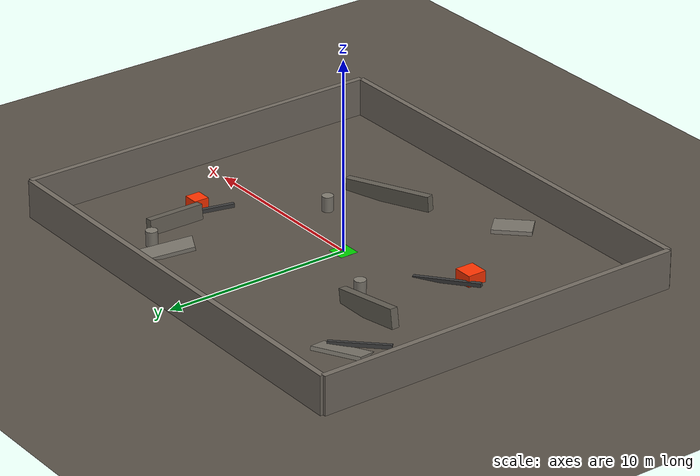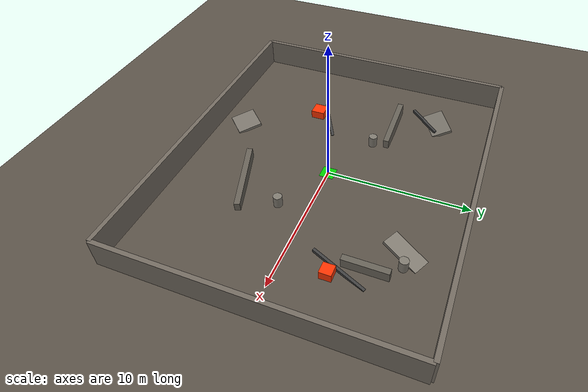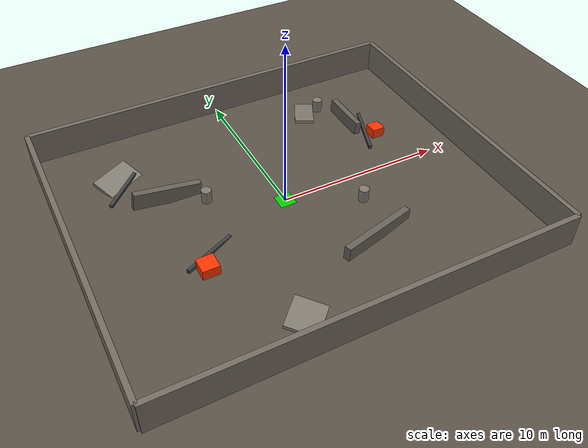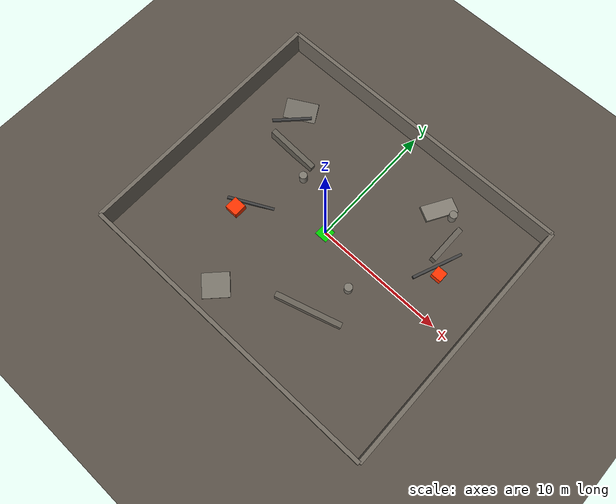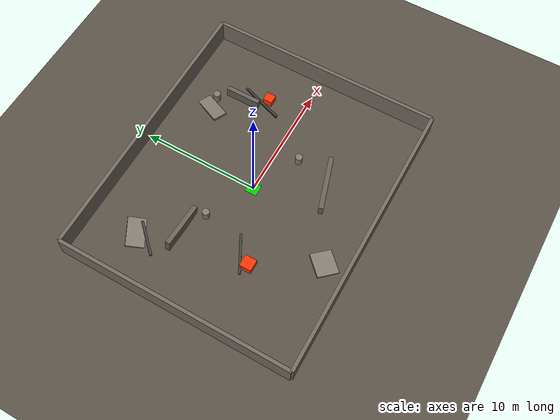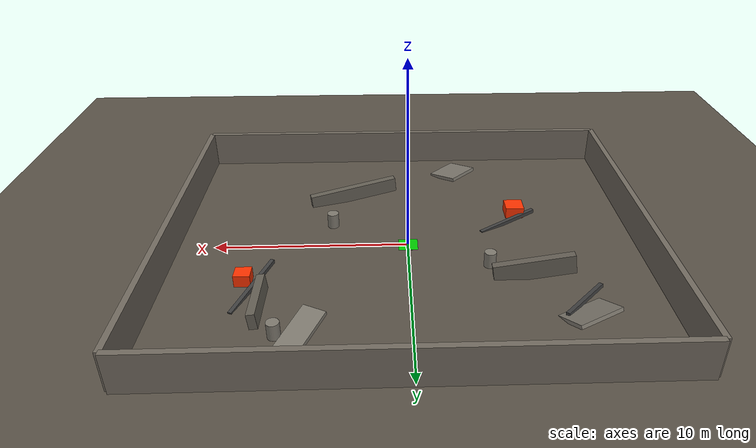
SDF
<sdf version="1.6">
 <world name="disaster_rescue">
  <plugin name="gazebo_ros_state" filename="libgazebo_ros_state.so">
   <ros><namespace>/gazebo</namespace></ros>
   <update_rate>10.0</update_rate>
  </plugin>
  <light name="sun" type="directional">
   <pose>0 0 10 0 0 0</pose>
   <diffuse>0.5 0.4 0.3 1</diffuse>
   <specular>0.1 0.1 0.1 1</specular>
   <direction>-0.5 0.1 -0.9</direction>
  </light>
  <model name="ground_plane">
   <static>true</static>
   <link name="link">
    <collision name="collision">
     <geometry><plane><normal>0 0 1</normal><size>50 50</size></plane></geometry>
    </collision>
    <visual name="visual">
     <geometry><plane><normal>0 0 1</normal><size>50 50</size></plane></geometry>
     <material><ambient>0.35 0.32 0.28 1</ambient></material>
    </visual>
   </link>
  </model>
  <model name="wall_north">
   <static>true</static>
   <pose>0 10 1 0 0 0</pose>
   <link name="link">
    <collision name="collision"><geometry><box><size>24 0.3 2</size></box></geometry></collision>
    <visual name="visual">
     <geometry><box><size>24 0.3 2</size></box></geometry>
     <material><ambient>0.45 0.42 0.38 1</ambient></material>
    </visual>
   </link>
  </model>
  <model name="wall_south">
   <static>true</static>
   <pose>0 -10 1 0 0 0</pose>
   <link name="link">
    <collision name="collision"><geometry><box><size>24 0.3 2</size></box></geometry></collision>
    <visual name="visual">
     <geometry><box><size>24 0.3 2</size></box></geometry>
     <material><ambient>0.45 0.42 0.38 1</ambient></material>
    </visual>
   </link>
  </model>
  <model name="wall_east">
   <static>true</static>
   <pose>12 0 1 0 0 0</pose>
   <link name="link">
    <collision name="collision"><geometry><box><size>0.3 20 2</size></box></geometry></collision>
    <visual name="visual">
     <geometry><box><size>0.3 20 2</size></box></geometry>
     <material><ambient>0.45 0.42 0.38 1</ambient></material>
    </visual>
   </link>
  </model>
  <model name="wall_west">
   <static>true</static>
   <pose>-12 0 1 0 0 0</pose>
   <link name="link">
    <collision name="collision"><geometry><box><size>0.3 20 2</size></box></geometry></collision>
    <visual name="visual">
     <geometry><box><size>0.3 20 2</size></box></geometry>
     <material><ambient>0.45 0.42 0.38 1</ambient></material>
    </visual>
   </link>
  </model>
  <model name="rubble_wall_1">
   <static>true</static>
   <pose>-6 3 0.5 0 0.15 0</pose>
   <link name="link">
    <collision name="collision"><geometry><box><size>4 0.4 1.0</size></box></geometry></collision>
    <visual name="visual">
     <geometry><box><size>4 0.4 1.0</size></box></geometry>
     <material><ambient>0.4 0.38 0.34 1</ambient></material>
    </visual>
   </link>
  </model>
  <model name="rubble_wall_2">
   <static>true</static>
   <pose>3 -5 0.4 0 0.08 0.3</pose>
   <link name="link">
    <collision name="collision"><geometry><box><size>5 0.4 0.8</size></box></geometry></collision>
    <visual name="visual">
     <geometry><box><size>5 0.4 0.8</size></box></geometry>
     <material><ambient>0.4 0.38 0.34 1</ambient></material>
    </visual>
   </link>
  </model>
  <model name="rubble_wall_3">
   <static>true</static>
   <pose>7 5 0.4 0.1 0 1.57</pose>
   <link name="link">
    <collision name="collision"><geometry><box><size>3 0.4 0.8</size></box></geometry></collision>
    <visual name="visual">
     <geometry><box><size>3 0.4 0.8</size></box></geometry>
     <material><ambient>0.4 0.38 0.34 1</ambient></material>
    </visual>
   </link>
  </model>
  <model name="slab_1">
   <static>true</static>
   <pose>-8 6 0.1 0.3 0 0.5</pose>
   <link name="link">
    <collision name="collision"><geometry><box><size>2.5 1.5 0.2</size></box></geometry></collision>
    <visual name="visual">
     <geometry><box><size>2.5 1.5 0.2</size></box></geometry>
     <material><ambient>0.5 0.48 0.44 1</ambient></material>
    </visual>
   </link>
  </model>
  <model name="slab_2">
   <static>true</static>
   <pose>5 7 0.1 0 0.2 1.1</pose>
   <link name="link">
    <collision name="collision"><geometry><box><size>3 1.2 0.2</size></box></geometry></collision>
    <visual name="visual">
     <geometry><box><size>3 1.2 0.2</size></box></geometry>
     <material><ambient>0.5 0.48 0.44 1</ambient></material>
    </visual>
   </link>
  </model>
  <model name="slab_3">
   <static>true</static>
   <pose>-3 -8 0.1 0.15 0 0.8</pose>
   <link name="link">
    <collision name="collision"><geometry><box><size>2 1.8 0.2</size></box></geometry></collision>
    <visual name="visual">
     <geometry><box><size>2 1.8 0.2</size></box></geometry>
     <material><ambient>0.5 0.48 0.44 1</ambient></material>
    </visual>
   </link>
  </model>
  <model name="fire_zone_1">
   <static>true</static>
   <pose>-6 -3 0.3 0 0 0</pose>
   <link name="link">
    <collision name="collision"><geometry><box><size>1.0 1.0 0.6</size></box></geometry></collision>
    <visual name="visual">
     <geometry><box><size>1.0 1.0 0.6</size></box></geometry>
     <material>
      <ambient>1.0 0.3 0.0 1</ambient>
      <diffuse>1.0 0.2 0.0 1</diffuse>
      <emissive>0.9 0.2 0.0 1</emissive>
     </material>
    </visual>
   </link>
  </model>
  <light name="fire_glow_1" type="point">
   <pose>-6 -3 1.5 0 0 0</pose>
   <diffuse>1.0 0.4 0.0 1</diffuse>
   <specular>0.5 0.2 0.0 1</specular>
   <attenuation><range>6</range><linear>0.2</linear><quadratic>0.05</quadratic></attenuation>
   <cast_shadows>false</cast_shadows>
  </light>
  <model name="fire_zone_2">
   <static>true</static>
   <pose>8 3 0.3 0 0 0</pose>
   <link name="link">
    <collision name="collision"><geometry><box><size>0.8 0.8 0.6</size></box></geometry></collision>
    <visual name="visual">
     <geometry><box><size>0.8 0.8 0.6</size></box></geometry>
     <material>
      <ambient>1.0 0.3 0.0 1</ambient>
      <diffuse>1.0 0.2 0.0 1</diffuse>
      <emissive>0.9 0.2 0.0 1</emissive>
     </material>
    </visual>
   </link>
  </model>
  <light name="fire_glow_2" type="point">
   <pose>8 3 1.5 0 0 0</pose>
   <diffuse>1.0 0.4 0.0 1</diffuse>
   <specular>0.5 0.2 0.0 1</specular>
   <attenuation><range>6</range><linear>0.2</linear><quadratic>0.05</quadratic></attenuation>
   <cast_shadows>false</cast_shadows>
  </light>
  <model name="beam_1">
   <static>true</static>
   <pose>-5.5 -2 0.1 0 0.1 0.5</pose>
   <link name="link">
    <collision name="collision"><geometry><box><size>3.5 0.2 0.2</size></box></geometry></collision>
    <visual name="visual">
     <geometry><box><size>3.5 0.2 0.2</size></box></geometry>
     <material><ambient>0.25 0.25 0.25 1</ambient></material>
    </visual>
   </link>
  </model>
  <model name="beam_2">
   <static>true</static>
   <pose>7.5 3.5 0.1 0 0.08 1.2</pose>
   <link name="link">
    <collision name="collision"><geometry><box><size>4.0 0.2 0.2</size></box></geometry></collision>
    <visual name="visual">
     <geometry><box><size>4.0 0.2 0.2</size></box></geometry>
     <material><ambient>0.25 0.25 0.25 1</ambient></material>
    </visual>
   </link>
  </model>
  <model name="beam_3">
   <static>true</static>
   <pose>-8 5 0.1 0.1 0 0.8</pose>
   <link name="link">
    <collision name="collision"><geometry><box><size>3.0 0.2 0.2</size></box></geometry></collision>
    <visual name="visual">
     <geometry><box><size>3.0 0.2 0.2</size></box></geometry>
     <material><ambient>0.25 0.25 0.25 1</ambient></material>
    </visual>
   </link>
  </model>
  <model name="pillar_1">
   <static>true</static>
   <pose>-4 2 0.4 0 0 0</pose>
   <link name="link">
    <collision name="collision">
     <geometry><cylinder><radius>0.3</radius><length>0.8</length></cylinder></geometry>
    </collision>
    <visual name="visual">
     <geometry><cylinder><radius>0.3</radius><length>0.8</length></cylinder></geometry>
     <material><ambient>0.5 0.48 0.44 1</ambient></material>
    </visual>
   </link>
  </model>
  <model name="pillar_2">
   <static>true</static>
   <pose>4 -2 0.4 0 0 0</pose>
   <link name="link">
    <collision name="collision">
     <geometry><cylinder><radius>0.3</radius><length>0.8</length></cylinder></geometry>
    </collision>
    <visual name="visual">
     <geometry><cylinder><radius>0.3</radius><length>0.8</length></cylinder></geometry>
     <material><ambient>0.5 0.48 0.44 1</ambient></material>
    </visual>
   </link>
  </model>
  <model name="pillar_3">
   <static>true</static>
   <pose>6 7 0.4 0 0 0</pose>
   <link name="link">
    <collision name="collision">
     <geometry><cylinder><radius>0.3</radius><length>0.8</length></cylinder></geometry>
    </collision>
    <visual name="visual">
     <geometry><cylinder><radius>0.3</radius><length>0.8</length></cylinder></geometry>
     <material><ambient>0.5 0.48 0.44 1</ambient></material>
    </visual>
   </link>
  </model>
  <model name="base_camp_marker">
   <static>true</static>
   <pose>0 0 0.001 0 0 0</pose>
   <link name="link">
    <visual name="visual">
     <geometry><box><size>1.0 1.0 0.002</size></box></geometry>
     <material><ambient>0.0 0.8 0.0 1</ambient></material>
    </visual>
   </link>
  </model>
  <physics type="ode">
   <real_time_update_rate>1000.0</real_time_update_rate>
   <max_step_size>0.001</max_step_size>
   <real_time_factor>1</real_time_factor>
  </physics>
 </world>
</sdf>
